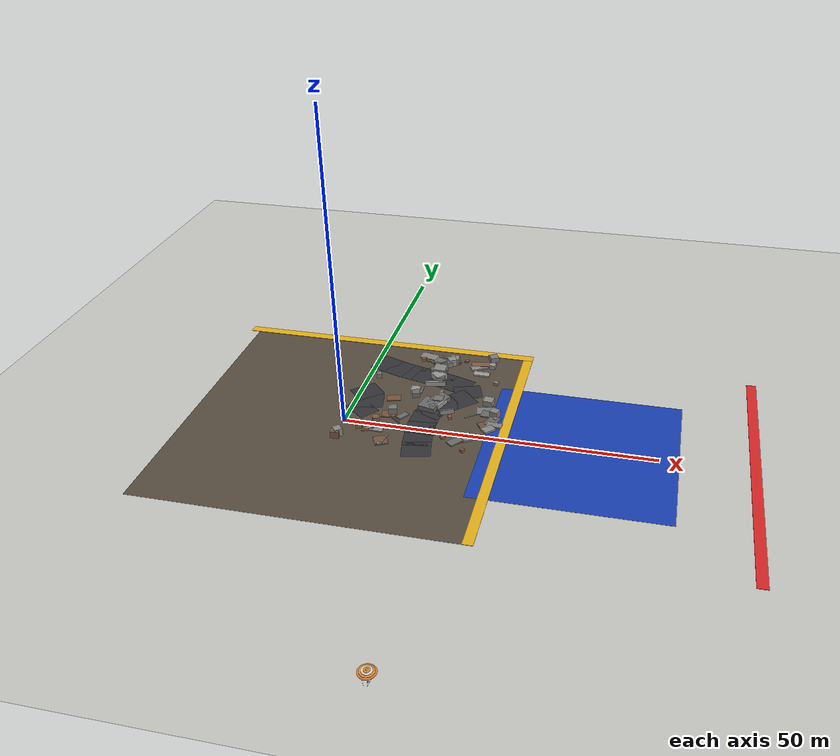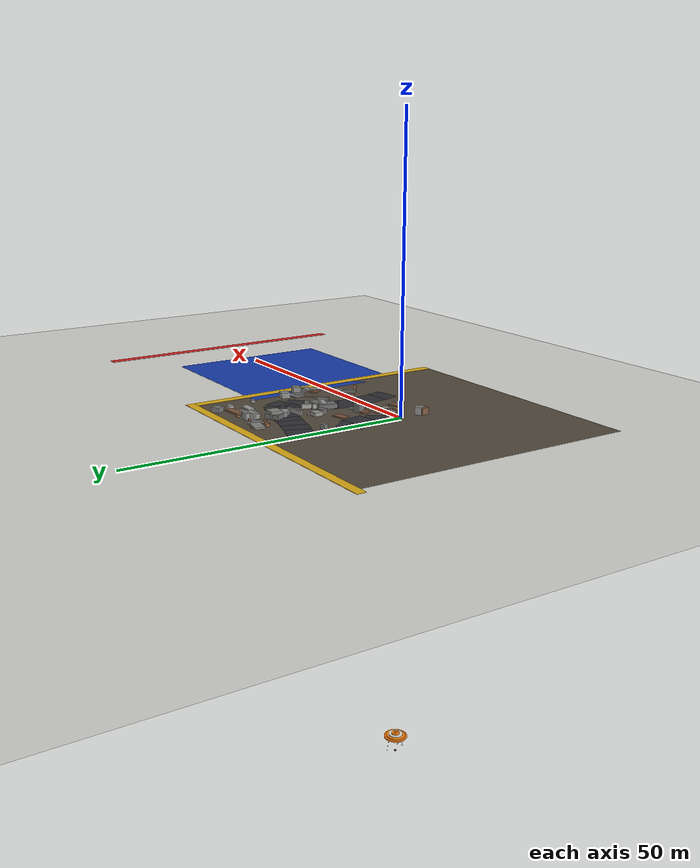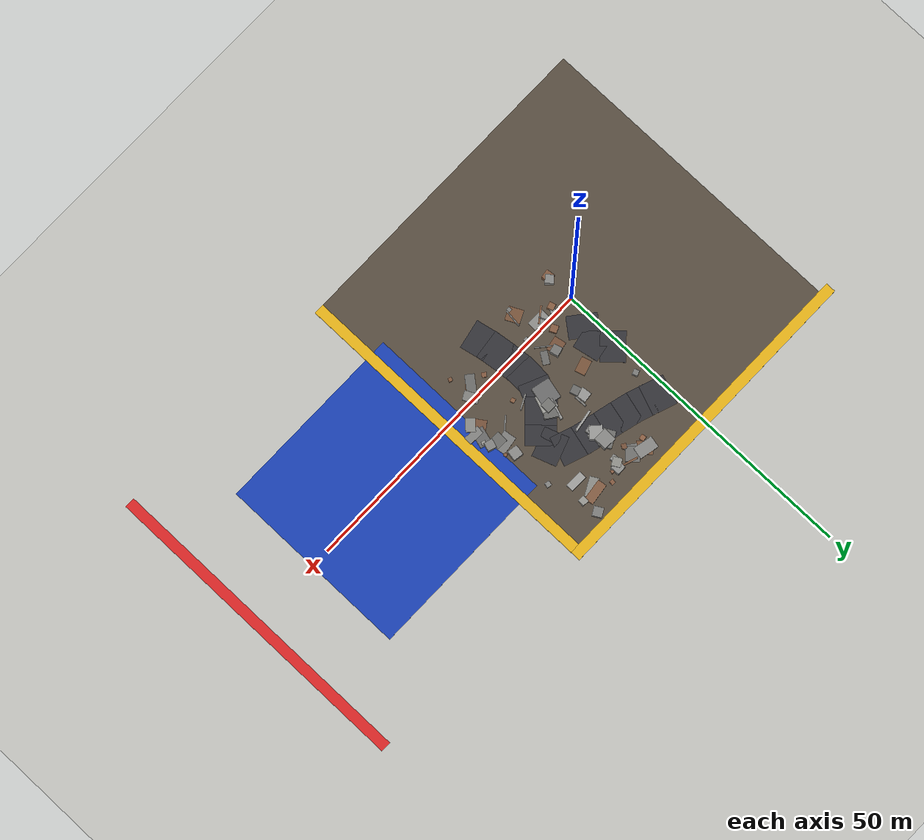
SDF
<sdf version="1.6">
 <world name="navitas_arena">
  <model name="ground_plane">
   <static>true</static>
   <link name="link">
    <collision name="collision">
     <geometry><plane><normal>0 0 1</normal><size>400 400</size></plane></geometry>
     <surface><friction><ode><mu>0.720</mu><mu2>0.720</mu2></ode></friction></surface>
    </collision>
    <visual name="visual">
     <cast_shadows>false</cast_shadows>
     <geometry><plane><normal>0 0 1</normal><size>400 400</size></plane></geometry>
     <material><ambient>0.720 0.700 0.650 1</ambient><diffuse>0.720 0.700 0.650 1</diffuse></material>
    </visual>
   </link>
  </model>
  <model name="landing">
   <static>true</static>
   <pose>38.000 0.000 0.010 0 0 0.000</pose>
   <link name="link">
    <collision name="col"><geometry><box><size>30.000 30.000 0.020</size></box></geometry></collision>
    <visual name="vis">
     <geometry><box><size>30.000 30.000 0.020</size></box></geometry>
     <material><ambient>0.10 0.25 0.70 1</ambient><diffuse>0.10 0.25 0.70 1</diffuse></material>
    </visual>
   </link>
  </model>
  <model name="gd_orta">
   <static>true</static>
   <pose>0.000 0.000 0.010 0 0 0.000</pose>
   <link name="link">
    <collision name="col"><geometry><box><size>50.000 50.000 0.020</size></box></geometry></collision>
    <visual name="vis">
     <geometry><box><size>50.000 50.000 0.020</size></box></geometry>
     <material><ambient>0.34 0.30 0.25 1</ambient><diffuse>0.34 0.30 0.25 1</diffuse></material>
    </visual>
   </link>
  </model>
  <model name="brd_orta_N">
   <static>true</static>
   <pose>0.000 25.800 0.040 0 0 0.000</pose>
   <link name="link">
    <collision name="col"><geometry><box><size>53.200 1.600 0.080</size></box></geometry></collision>
    <visual name="vis">
     <geometry><box><size>53.200 1.600 0.080</size></box></geometry>
     <material><ambient>0.90 0.70 0.10 1</ambient><diffuse>0.90 0.70 0.10 1</diffuse></material>
    </visual>
   </link>
  </model>
  <model name="brd_orta_E">
   <static>true</static>
   <pose>25.800 0.000 0.040 0 0 0.000</pose>
   <link name="link">
    <collision name="col"><geometry><box><size>1.600 50.000 0.080</size></box></geometry></collision>
    <visual name="vis">
     <geometry><box><size>1.600 50.000 0.080</size></box></geometry>
     <material><ambient>0.90 0.70 0.10 1</ambient><diffuse>0.90 0.70 0.10 1</diffuse></material>
    </visual>
   </link>
  </model>
  <model name="road_orta_2_11">
   <static>true</static>
   <pose>1.761 4.000 0.040 0 0 0.895</pose>
   <link name="link">
    <collision name="col"><geometry><box><size>3.463 4.600 0.020</size></box></geometry></collision>
    <visual name="vis">
     <geometry><box><size>3.463 4.600 0.020</size></box></geometry>
     <material><ambient>0.20 0.20 0.22 1</ambient><diffuse>0.20 0.20 0.22 1</diffuse></material>
    </visual>
   </link>
  </model>
  <model name="road_orta_2_12">
   <static>true</static>
   <pose>2.263 6.536 0.040 0 0 1.763</pose>
   <link name="link">
    <collision name="col"><geometry><box><size>4.031 4.600 0.020</size></box></geometry></collision>
    <visual name="vis">
     <geometry><box><size>4.031 4.600 0.020</size></box></geometry>
     <material><ambient>0.20 0.20 0.22 1</ambient><diffuse>0.20 0.20 0.22 1</diffuse></material>
    </visual>
   </link>
  </model>
  <model name="road_orta_2_13">
   <static>true</static>
   <pose>0.994 9.124 0.040 0 0 2.316</pose>
   <link name="link">
    <collision name="col"><geometry><box><size>3.760 4.600 0.020</size></box></geometry></collision>
    <visual name="vis">
     <geometry><box><size>3.760 4.600 0.020</size></box></geometry>
     <material><ambient>0.20 0.20 0.22 1</ambient><diffuse>0.20 0.20 0.22 1</diffuse></material>
    </visual>
   </link>
  </model>
  <model name="road_orta_3_8">
   <static>true</static>
   <pose>13.359 -5.200 0.040 0 0 1.778</pose>
   <link name="link">
    <collision name="col"><geometry><box><size>3.761 4.600 0.020</size></box></geometry></collision>
    <visual name="vis">
     <geometry><box><size>3.761 4.600 0.020</size></box></geometry>
     <material><ambient>0.20 0.20 0.22 1</ambient><diffuse>0.20 0.20 0.22 1</diffuse></material>
    </visual>
   </link>
  </model>
  <model name="road_orta_3_9">
   <static>true</static>
   <pose>12.883 -2.400 0.040 0 0 1.700</pose>
   <link name="link">
    <collision name="col"><geometry><box><size>3.724 4.600 0.020</size></box></geometry></collision>
    <visual name="vis">
     <geometry><box><size>3.724 4.600 0.020</size></box></geometry>
     <material><ambient>0.20 0.20 0.22 1</ambient><diffuse>0.20 0.20 0.22 1</diffuse></material>
    </visual>
   </link>
  </model>
  <model name="road_orta_3_10">
   <static>true</static>
   <pose>12.580 0.400 0.040 0 0 1.657</pose>
   <link name="link">
    <collision name="col"><geometry><box><size>3.710 4.600 0.020</size></box></geometry></collision>
    <visual name="vis">
     <geometry><box><size>3.710 4.600 0.020</size></box></geometry>
     <material><ambient>0.20 0.20 0.22 1</ambient><diffuse>0.20 0.20 0.22 1</diffuse></material>
    </visual>
   </link>
  </model>
  <model name="road_orta_3_11">
   <static>true</static>
   <pose>12.520 3.200 0.040 0 0 1.527</pose>
   <link name="link">
    <collision name="col"><geometry><box><size>3.703 4.600 0.020</size></box></geometry></collision>
    <visual name="vis">
     <geometry><box><size>3.703 4.600 0.020</size></box></geometry>
     <material><ambient>0.20 0.20 0.22 1</ambient><diffuse>0.20 0.20 0.22 1</diffuse></material>
    </visual>
   </link>
  </model>
  <model name="road_orta_3_12">
   <static>true</static>
   <pose>13.121 5.811 0.040 0 0 1.152</pose>
   <link name="link">
    <collision name="col"><geometry><box><size>3.551 4.600 0.020</size></box></geometry></collision>
    <visual name="vis">
     <geometry><box><size>3.551 4.600 0.020</size></box></geometry>
     <material><ambient>0.20 0.20 0.22 1</ambient><diffuse>0.20 0.20 0.22 1</diffuse></material>
    </visual>
   </link>
  </model>
  <model name="road_orta_3_13">
   <static>true</static>
   <pose>14.803 8.077 0.040 0 0 0.745</pose>
   <link name="link">
    <collision name="col"><geometry><box><size>4.011 4.600 0.020</size></box></geometry></collision>
    <visual name="vis">
     <geometry><box><size>4.011 4.600 0.020</size></box></geometry>
     <material><ambient>0.20 0.20 0.22 1</ambient><diffuse>0.20 0.20 0.22 1</diffuse></material>
    </visual>
   </link>
  </model>
  <model name="road_orta_3_14">
   <static>true</static>
   <pose>17.014 10.157 0.040 0 0 0.765</pose>
   <link name="link">
    <collision name="col"><geometry><box><size>3.861 4.600 0.020</size></box></geometry></collision>
    <visual name="vis">
     <geometry><box><size>3.861 4.600 0.020</size></box></geometry>
     <material><ambient>0.20 0.20 0.22 1</ambient><diffuse>0.20 0.20 0.22 1</diffuse></material>
    </visual>
   </link>
  </model>
  <model name="road_orta_3_15">
   <static>true</static>
   <pose>17.605 12.544 0.040 0 0 1.908</pose>
   <link name="link">
    <collision name="col"><geometry><box><size>3.786 4.600 0.020</size></box></geometry></collision>
    <visual name="vis">
     <geometry><box><size>3.786 4.600 0.020</size></box></geometry>
     <material><ambient>0.20 0.20 0.22 1</ambient><diffuse>0.20 0.20 0.22 1</diffuse></material>
    </visual>
   </link>
  </model>
  <model name="road_orta_3_16">
   <static>true</static>
   <pose>15.441 14.505 0.040 0 0 2.801</pose>
   <link name="link">
    <collision name="col"><geometry><box><size>4.480 4.600 0.020</size></box></geometry></collision>
    <visual name="vis">
     <geometry><box><size>4.480 4.600 0.020</size></box></geometry>
     <material><ambient>0.20 0.20 0.22 1</ambient><diffuse>0.20 0.20 0.22 1</diffuse></material>
    </visual>
   </link>
  </model>
  <model name="road_orta_3_17">
   <static>true</static>
   <pose>12.365 15.463 0.040 0 0 2.888</pose>
   <link name="link">
    <collision name="col"><geometry><box><size>3.770 4.600 0.020</size></box></geometry></collision>
    <visual name="vis">
     <geometry><box><size>3.770 4.600 0.020</size></box></geometry>
     <material><ambient>0.20 0.20 0.22 1</ambient><diffuse>0.20 0.20 0.22 1</diffuse></material>
    </visual>
   </link>
  </model>
  <model name="road_orta_3_18">
   <static>true</static>
   <pose>9.567 16.163 0.040 0 0 2.904</pose>
   <link name="link">
    <collision name="col"><geometry><box><size>3.800 4.600 0.020</size></box></geometry></collision>
    <visual name="vis">
     <geometry><box><size>3.800 4.600 0.020</size></box></geometry>
     <material><ambient>0.20 0.20 0.22 1</ambient><diffuse>0.20 0.20 0.22 1</diffuse></material>
    </visual>
   </link>
  </model>
  <model name="road_orta_3_19">
   <static>true</static>
   <pose>6.892 16.836 0.040 0 0 2.885</pose>
   <link name="link">
    <collision name="col"><geometry><box><size>3.517 4.600 0.020</size></box></geometry></collision>
    <visual name="vis">
     <geometry><box><size>3.517 4.600 0.020</size></box></geometry>
     <material><ambient>0.20 0.20 0.22 1</ambient><diffuse>0.20 0.20 0.22 1</diffuse></material>
    </visual>
   </link>
  </model>
  <model name="road_orta_3_20">
   <static>true</static>
   <pose>4.376 17.589 0.040 0 0 2.817</pose>
   <link name="link">
    <collision name="col"><geometry><box><size>3.539 4.600 0.020</size></box></geometry></collision>
    <visual name="vis">
     <geometry><box><size>3.539 4.600 0.020</size></box></geometry>
     <material><ambient>0.20 0.20 0.22 1</ambient><diffuse>0.20 0.20 0.22 1</diffuse></material>
    </visual>
   </link>
  </model>
  <model name="road_orta_3_21">
   <static>true</static>
   <pose>1.726 18.524 0.040 0 0 2.789</pose>
   <link name="link">
    <collision name="col"><geometry><box><size>3.881 4.600 0.020</size></box></geometry></collision>
    <visual name="vis">
     <geometry><box><size>3.881 4.600 0.020</size></box></geometry>
     <material><ambient>0.20 0.20 0.22 1</ambient><diffuse>0.20 0.20 0.22 1</diffuse></material>
    </visual>
   </link>
  </model>
  <model name="blk_orta_3_1_0">
   <static>true</static>
   <pose>13.043 9.132 0.425 0 0 1.237</pose>
   <link name="link">
    <collision name="col"><geometry><box><size>4.063 0.356 0.850</size></box></geometry></collision>
    <visual name="vis">
     <geometry><box><size>4.063 0.356 0.850</size></box></geometry>
     <material><ambient>0.59 0.59 0.58 1</ambient><diffuse>0.59 0.59 0.58 1</diffuse></material>
    </visual>
   </link>
  </model>
  <model name="blk_orta_3_1_1">
   <static>true</static>
   <pose>13.751 8.754 0.425 0 0 0.961</pose>
   <link name="link">
    <collision name="col"><geometry><box><size>2.867 2.124 0.850</size></box></geometry></collision>
    <visual name="vis">
     <geometry><box><size>2.867 2.124 0.850</size></box></geometry>
     <material><ambient>0.42 0.42 0.41 1</ambient><diffuse>0.42 0.42 0.41 1</diffuse></material>
    </visual>
   </link>
  </model>
  <model name="blk_orta_3_1_2">
   <static>true</static>
   <pose>12.506 6.894 0.425 0 0 1.340</pose>
   <link name="link">
    <collision name="col"><geometry><box><size>3.217 2.908 0.850</size></box></geometry></collision>
    <visual name="vis">
     <geometry><box><size>3.217 2.908 0.850</size></box></geometry>
     <material><ambient>0.42 0.42 0.42 1</ambient><diffuse>0.42 0.42 0.42 1</diffuse></material>
    </visual>
   </link>
  </model>
  <model name="blk_orta_3_1_3">
   <static>true</static>
   <pose>13.083 6.121 0.425 0 0 0.471</pose>
   <link name="link">
    <collision name="col"><geometry><box><size>0.994 0.994 0.850</size></box></geometry></collision>
    <visual name="vis">
     <geometry><box><size>0.994 0.994 0.850</size></box></geometry>
     <material><ambient>0.43 0.43 0.42 1</ambient><diffuse>0.43 0.43 0.42 1</diffuse></material>
    </visual>
   </link>
  </model>
  <model name="blk_orta_3_1_4">
   <static>true</static>
   <pose>13.597 8.377 0.505 0 0 3.120</pose>
   <link name="link">
    <collision name="col"><geometry><box><size>1.605 1.605 1.010</size></box></geometry></collision>
    <visual name="vis">
     <geometry><box><size>1.605 1.605 1.010</size></box></geometry>
     <material><ambient>0.45 0.45 0.44 1</ambient><diffuse>0.45 0.45 0.44 1</diffuse></material>
    </visual>
   </link>
  </model>
  <model name="blk_orta_3_1_5">
   <static>true</static>
   <pose>15.682 5.416 0.425 0 0 0.465</pose>
   <link name="link">
    <collision name="col"><geometry><box><size>2.324 0.215 0.850</size></box></geometry></collision>
    <visual name="vis">
     <geometry><box><size>2.324 0.215 0.850</size></box></geometry>
     <material><ambient>0.53 0.53 0.52 1</ambient><diffuse>0.53 0.53 0.52 1</diffuse></material>
    </visual>
   </link>
  </model>
  <model name="blk_orta_3_1_6">
   <static>true</static>
   <pose>13.386 7.809 0.425 0 0 1.223</pose>
   <link name="link">
    <collision name="col"><geometry><box><size>2.590 2.421 0.850</size></box></geometry></collision>
    <visual name="vis">
     <geometry><box><size>2.590 2.421 0.850</size></box></geometry>
     <material><ambient>0.62 0.62 0.60 1</ambient><diffuse>0.62 0.62 0.60 1</diffuse></material>
    </visual>
   </link>
  </model>
  <model name="blk_orta_3_2_0">
   <static>true</static>
   <pose>12.155 16.168 0.425 0 0 2.406</pose>
   <link name="link">
    <collision name="col"><geometry><box><size>2.184 0.214 0.850</size></box></geometry></collision>
    <visual name="vis">
     <geometry><box><size>2.184 0.214 0.850</size></box></geometry>
     <material><ambient>0.59 0.59 0.57 1</ambient><diffuse>0.59 0.59 0.57 1</diffuse></material>
    </visual>
   </link>
  </model>
  <model name="blk_orta_3_2_1">
   <static>true</static>
   <pose>11.307 17.647 0.425 0 0 0.478</pose>
   <link name="link">
    <collision name="col"><geometry><box><size>2.611 1.941 0.850</size></box></geometry></collision>
    <visual name="vis">
     <geometry><box><size>2.611 1.941 0.850</size></box></geometry>
     <material><ambient>0.43 0.43 0.42 1</ambient><diffuse>0.43 0.43 0.42 1</diffuse></material>
    </visual>
   </link>
  </model>
  <model name="blk_orta_3_2_2">
   <static>true</static>
   <pose>11.817 13.437 0.425 0 0 0.164</pose>
   <link name="link">
    <collision name="col"><geometry><box><size>3.445 0.315 0.850</size></box></geometry></collision>
    <visual name="vis">
     <geometry><box><size>3.445 0.315 0.850</size></box></geometry>
     <material><ambient>0.62 0.62 0.61 1</ambient><diffuse>0.62 0.62 0.61 1</diffuse></material>
    </visual>
   </link>
  </model>
  <model name="blk_orta_3_2_3">
   <static>true</static>
   <pose>11.802 15.916 0.481 0 0 0.829</pose>
   <link name="link">
    <collision name="col"><geometry><box><size>1.987 1.987 0.962</size></box></geometry></collision>
    <visual name="vis">
     <geometry><box><size>1.987 1.987 0.962</size></box></geometry>
     <material><ambient>0.60 0.60 0.59 1</ambient><diffuse>0.60 0.60 0.59 1</diffuse></material>
    </visual>
   </link>
  </model>
  <model name="blk_orta_3_2_4">
   <static>true</static>
   <pose>11.668 17.508 0.655 0 0 3.108</pose>
   <link name="link">
    <collision name="col"><geometry><box><size>2.084 2.084 1.311</size></box></geometry></collision>
    <visual name="vis">
     <geometry><box><size>2.084 2.084 1.311</size></box></geometry>
     <material><ambient>0.53 0.53 0.52 1</ambient><diffuse>0.53 0.53 0.52 1</diffuse></material>
    </visual>
   </link>
  </model>
  <model name="blk_orta_3_2_5">
   <static>true</static>
   <pose>12.084 15.139 0.425 0 0 0.167</pose>
   <link name="link">
    <collision name="col"><geometry><box><size>1.114 1.114 0.850</size></box></geometry></collision>
    <visual name="vis">
     <geometry><box><size>1.114 1.114 0.850</size></box></geometry>
     <material><ambient>0.51 0.51 0.50 1</ambient><diffuse>0.51 0.51 0.50 1</diffuse></material>
    </visual>
   </link>
  </model>
  <model name="blk_orta_3_2_6">
   <static>true</static>
   <pose>11.300 15.963 0.425 0 0 1.289</pose>
   <link name="link">
    <collision name="col"><geometry><box><size>0.633 0.633 0.850</size></box></geometry></collision>
    <visual name="vis">
     <geometry><box><size>0.633 0.633 0.850</size></box></geometry>
     <material><ambient>0.59 0.59 0.57 1</ambient><diffuse>0.59 0.59 0.57 1</diffuse></material>
    </visual>
   </link>
  </model>
  <model name="deb_orta_2">
   <static>true</static>
   <pose>7.858 -3.983 0.157 0 0 1.451</pose>
   <link name="link">
    <collision name="col"><geometry><box><size>2.770 0.180 0.315</size></box></geometry></collision>
    <visual name="vis">
     <geometry><box><size>2.770 0.180 0.315</size></box></geometry>
     <material><ambient>0.53 0.53 0.52 1</ambient><diffuse>0.53 0.53 0.52 1</diffuse></material>
    </visual>
   </link>
  </model>
  <model name="deb_orta_4">
   <static>true</static>
   <pose>18.001 21.660 0.162 0 0 0.132</pose>
   <link name="link">
    <collision name="col"><geometry><box><size>3.339 1.401 0.324</size></box></geometry></collision>
    <visual name="vis">
     <geometry><box><size>3.339 1.401 0.324</size></box></geometry>
     <material><ambient>0.51 0.36 0.26 1</ambient><diffuse>0.51 0.36 0.26 1</diffuse></material>
    </visual>
   </link>
  </model>
  <model name="deb_orta_8">
   <static>true</static>
   <pose>5.498 -1.181 0.095 0 0 3.117</pose>
   <link name="link">
    <collision name="col"><geometry><box><size>2.810 1.433 0.190</size></box></geometry></collision>
    <visual name="vis">
     <geometry><box><size>2.810 1.433 0.190</size></box></geometry>
     <material><ambient>0.55 0.55 0.54 1</ambient><diffuse>0.55 0.55 0.54 1</diffuse></material>
    </visual>
   </link>
  </model>
  <model name="deb_orta_9">
   <static>true</static>
   <pose>13.305 21.657 0.226 0 0 1.503</pose>
   <link name="link">
    <collision name="col"><geometry><box><size>0.646 0.646 0.452</size></box></geometry></collision>
    <visual name="vis">
     <geometry><box><size>0.646 0.646 0.452</size></box></geometry>
     <material><ambient>0.50 0.35 0.25 1</ambient><diffuse>0.50 0.35 0.25 1</diffuse></material>
    </visual>
   </link>
  </model>
  <model name="deb_orta_13">
   <static>true</static>
   <pose>23.364 4.590 0.140 0 0 1.288</pose>
   <link name="link">
    <collision name="col"><geometry><box><size>2.653 1.808 0.281</size></box></geometry></collision>
    <visual name="vis">
     <geometry><box><size>2.653 1.808 0.281</size></box></geometry>
     <material><ambient>0.41 0.41 0.41 1</ambient><diffuse>0.41 0.41 0.41 1</diffuse></material>
    </visual>
   </link>
  </model>
  <model name="deb_orta_16">
   <static>true</static>
   <pose>18.930 -1.732 0.107 0 0 0.892</pose>
   <link name="link">
    <collision name="col"><geometry><box><size>3.130 1.441 0.213</size></box></geometry></collision>
    <visual name="vis">
     <geometry><box><size>3.130 1.441 0.213</size></box></geometry>
     <material><ambient>0.42 0.42 0.41 1</ambient><diffuse>0.42 0.42 0.41 1</diffuse></material>
    </visual>
   </link>
  </model>
  <model name="deb_orta_20">
   <static>true</static>
   <pose>22.086 6.592 0.109 0 0 3.087</pose>
   <link name="link">
    <collision name="col"><geometry><box><size>1.828 1.788 0.217</size></box></geometry></collision>
    <visual name="vis">
     <geometry><box><size>1.828 1.788 0.217</size></box></geometry>
     <material><ambient>0.42 0.42 0.41 1</ambient><diffuse>0.42 0.42 0.41 1</diffuse></material>
    </visual>
   </link>
  </model>
  <model name="deb_orta_26">
   <static>true</static>
   <pose>14.215 21.386 0.257 0 0 1.494</pose>
   <link name="link">
    <collision name="col"><geometry><box><size>0.478 0.478 0.514</size></box></geometry></collision>
    <visual name="vis">
     <geometry><box><size>0.478 0.478 0.514</size></box></geometry>
     <material><ambient>0.53 0.37 0.27 1</ambient><diffuse>0.53 0.37 0.27 1</diffuse></material>
    </visual>
   </link>
  </model>
  <model name="deb_orta_29">
   <static>true</static>
   <pose>19.844 5.804 0.084 0 0 0.687</pose>
   <link name="link">
    <collision name="col"><geometry><box><size>2.913 0.237 0.169</size></box></geometry></collision>
    <visual name="vis">
     <geometry><box><size>2.913 0.237 0.169</size></box></geometry>
     <material><ambient>0.47 0.47 0.46 1</ambient><diffuse>0.47 0.47 0.46 1</diffuse></material>
    </visual>
   </link>
  </model>
  <model name="deb_orta_30">
   <static>true</static>
   <pose>23.893 3.628 0.152 0 0 3.086</pose>
   <link name="link">
    <collision name="col"><geometry><box><size>2.454 1.243 0.304</size></box></geometry></collision>
    <visual name="vis">
     <geometry><box><size>2.454 1.243 0.304</size></box></geometry>
     <material><ambient>0.51 0.51 0.50 1</ambient><diffuse>0.51 0.51 0.50 1</diffuse></material>
    </visual>
   </link>
  </model>
  <model name="deb_orta_39">
   <static>true</static>
   <pose>11.553 22.176 0.144 0 0 2.817</pose>
   <link name="link">
    <collision name="col"><geometry><box><size>2.626 0.262 0.288</size></box></geometry></collision>
    <visual name="vis">
     <geometry><box><size>2.626 0.262 0.288</size></box></geometry>
     <material><ambient>0.50 0.35 0.25 1</ambient><diffuse>0.50 0.35 0.25 1</diffuse></material>
    </visual>
   </link>
  </model>
  <model name="deb_orta_41">
   <static>true</static>
   <pose>5.254 1.552 0.210 0 0 1.754</pose>
   <link name="link">
    <collision name="col"><geometry><box><size>0.404 0.404 0.420</size></box></geometry></collision>
    <visual name="vis">
     <geometry><box><size>0.404 0.404 0.420</size></box></geometry>
     <material><ambient>0.47 0.33 0.24 1</ambient><diffuse>0.47 0.33 0.24 1</diffuse></material>
    </visual>
   </link>
  </model>
  <model name="deb_orta_45">
   <static>true</static>
   <pose>8.467 22.478 0.162 0 0 2.933</pose>
   <link name="link">
    <collision name="col"><geometry><box><size>3.067 1.820 0.324</size></box></geometry></collision>
    <visual name="vis">
     <geometry><box><size>3.067 1.820 0.324</size></box></geometry>
     <material><ambient>0.53 0.53 0.52 1</ambient><diffuse>0.53 0.53 0.52 1</diffuse></material>
    </visual>
   </link>
  </model>
  <model name="deb_orta_48">
   <static>true</static>
   <pose>4.946 1.329 0.361 0 0 1.979</pose>
   <link name="link">
    <collision name="col"><geometry><box><size>1.104 1.104 0.722</size></box></geometry></collision>
    <visual name="vis">
     <geometry><box><size>1.104 1.104 0.722</size></box></geometry>
     <material><ambient>0.52 0.36 0.26 1</ambient><diffuse>0.52 0.36 0.26 1</diffuse></material>
    </visual>
   </link>
  </model>
  <model name="deb_orta_49">
   <static>true</static>
   <pose>8.840 3.241 0.094 0 0 0.980</pose>
   <link name="link">
    <collision name="col"><geometry><box><size>2.019 1.084 0.188</size></box></geometry></collision>
    <visual name="vis">
     <geometry><box><size>2.019 1.084 0.188</size></box></geometry>
     <material><ambient>0.42 0.42 0.41 1</ambient><diffuse>0.42 0.42 0.41 1</diffuse></material>
    </visual>
   </link>
  </model>
  <model name="deb_orta_50">
   <static>true</static>
   <pose>16.597 -1.349 0.149 0 0 0.924</pose>
   <link name="link">
    <collision name="col"><geometry><box><size>0.710 0.710 0.298</size></box></geometry></collision>
    <visual name="vis">
     <geometry><box><size>0.710 0.710 0.298</size></box></geometry>
     <material><ambient>0.51 0.35 0.25 1</ambient><diffuse>0.51 0.35 0.25 1</diffuse></material>
    </visual>
   </link>
  </model>
  <model name="deb_orta_56">
   <static>true</static>
   <pose>13.337 21.620 0.580 0 0 0.038</pose>
   <link name="link">
    <collision name="col"><geometry><box><size>1.439 1.439 1.160</size></box></geometry></collision>
    <visual name="vis">
     <geometry><box><size>1.439 1.439 1.160</size></box></geometry>
     <material><ambient>0.56 0.56 0.55 1</ambient><diffuse>0.56 0.56 0.55 1</diffuse></material>
    </visual>
   </link>
  </model>
  <model name="deb_orta_60">
   <static>true</static>
   <pose>0.060 -4.451 0.594 0 0 0.127</pose>
   <link name="link">
    <collision name="col"><geometry><box><size>1.368 1.368 1.189</size></box></geometry></collision>
    <visual name="vis">
     <geometry><box><size>1.368 1.368 1.189</size></box></geometry>
     <material><ambient>0.50 0.35 0.25 1</ambient><diffuse>0.50 0.35 0.25 1</diffuse></material>
    </visual>
   </link>
  </model>
  <model name="deb_orta_61">
   <static>true</static>
   <pose>17.839 20.812 0.130 0 0 0.494</pose>
   <link name="link">
    <collision name="col"><geometry><box><size>2.974 1.461 0.259</size></box></geometry></collision>
    <visual name="vis">
     <geometry><box><size>2.974 1.461 0.259</size></box></geometry>
     <material><ambient>0.54 0.54 0.52 1</ambient><diffuse>0.54 0.54 0.52 1</diffuse></material>
    </visual>
   </link>
  </model>
  <model name="deb_orta_63">
   <static>true</static>
   <pose>0.267 -4.011 0.669 0 0 2.288</pose>
   <link name="link">
    <collision name="col"><geometry><box><size>1.285 1.285 1.339</size></box></geometry></collision>
    <visual name="vis">
     <geometry><box><size>1.285 1.285 1.339</size></box></geometry>
     <material><ambient>0.53 0.53 0.52 1</ambient><diffuse>0.53 0.53 0.52 1</diffuse></material>
    </visual>
   </link>
  </model>
  <model name="deb_orta_67">
   <static>true</static>
   <pose>4.776 -1.562 0.118 0 0 0.638</pose>
   <link name="link">
    <collision name="col"><geometry><box><size>2.675 0.259 0.236</size></box></geometry></collision>
    <visual name="vis">
     <geometry><box><size>2.675 0.259 0.236</size></box></geometry>
     <material><ambient>0.53 0.37 0.26 1</ambient><diffuse>0.53 0.37 0.26 1</diffuse></material>
    </visual>
   </link>
  </model>
  <model name="deb_orta_70">
   <static>true</static>
   <pose>18.744 18.613 0.143 0 0 3.117</pose>
   <link name="link">
    <collision name="col"><geometry><box><size>2.751 1.222 0.285</size></box></geometry></collision>
    <visual name="vis">
     <geometry><box><size>2.751 1.222 0.285</size></box></geometry>
     <material><ambient>0.62 0.62 0.61 1</ambient><diffuse>0.62 0.62 0.61 1</diffuse></material>
    </visual>
   </link>
  </model>
  <model name="deb_orta_71">
   <static>true</static>
   <pose>5.983 8.004 0.106 0 0 0.279</pose>
   <link name="link">
    <collision name="col"><geometry><box><size>2.349 1.573 0.212</size></box></geometry></collision>
    <visual name="vis">
     <geometry><box><size>2.349 1.573 0.212</size></box></geometry>
     <material><ambient>0.47 0.33 0.23 1</ambient><diffuse>0.47 0.33 0.23 1</diffuse></material>
    </visual>
   </link>
  </model>
  <model name="deb_orta_73">
   <static>true</static>
   <pose>10.458 20.111 0.238 0 0 1.028</pose>
   <link name="link">
    <collision name="col"><geometry><box><size>0.759 0.759 0.475</size></box></geometry></collision>
    <visual name="vis">
     <geometry><box><size>0.759 0.759 0.475</size></box></geometry>
     <material><ambient>0.46 0.32 0.23 1</ambient><diffuse>0.46 0.32 0.23 1</diffuse></material>
    </visual>
   </link>
  </model>
  <model name="deb_orta_89">
   <static>true</static>
   <pose>7.344 -4.188 0.095 0 0 2.026</pose>
   <link name="link">
    <collision name="col"><geometry><box><size>2.250 2.108 0.191</size></box></geometry></collision>
    <visual name="vis">
     <geometry><box><size>2.250 2.108 0.191</size></box></geometry>
     <material><ambient>0.47 0.33 0.23 1</ambient><diffuse>0.47 0.33 0.23 1</diffuse></material>
    </visual>
   </link>
  </model>
  <model name="deb_orta_93">
   <static>true</static>
   <pose>19.133 -1.828 0.096 0 0 0.694</pose>
   <link name="link">
    <collision name="col"><geometry><box><size>2.951 1.087 0.192</size></box></geometry></collision>
    <visual name="vis">
     <geometry><box><size>2.951 1.087 0.192</size></box></geometry>
     <material><ambient>0.48 0.34 0.24 1</ambient><diffuse>0.48 0.34 0.24 1</diffuse></material>
    </visual>
   </link>
  </model>
  <model name="deb_orta_94">
   <static>true</static>
   <pose>21.652 7.446 0.098 0 0 0.147</pose>
   <link name="link">
    <collision name="col"><geometry><box><size>2.844 1.990 0.196</size></box></geometry></collision>
    <visual name="vis">
     <geometry><box><size>2.844 1.990 0.196</size></box></geometry>
     <material><ambient>0.49 0.49 0.48 1</ambient><diffuse>0.49 0.49 0.48 1</diffuse></material>
    </visual>
   </link>
  </model>
  <model name="deb_orta_98">
   <static>true</static>
   <pose>8.999 10.937 0.347 0 0 1.678</pose>
   <link name="link">
    <collision name="col"><geometry><box><size>1.532 1.532 0.694</size></box></geometry></collision>
    <visual name="vis">
     <geometry><box><size>1.532 1.532 0.694</size></box></geometry>
     <material><ambient>0.59 0.59 0.58 1</ambient><diffuse>0.59 0.59 0.58 1</diffuse></material>
    </visual>
   </link>
  </model>
  <model name="deb_orta_99">
   <static>true</static>
   <pose>23.177 2.249 0.170 0 0 0.799</pose>
   <link name="link">
    <collision name="col"><geometry><box><size>2.031 1.452 0.340</size></box></geometry></collision>
    <visual name="vis">
     <geometry><box><size>2.031 1.452 0.340</size></box></geometry>
     <material><ambient>0.54 0.54 0.52 1</ambient><diffuse>0.54 0.54 0.52 1</diffuse></material>
    </visual>
   </link>
  </model>
  <model name="deb_orta_102">
   <static>true</static>
   <pose>12.728 20.347 0.451 0 0 1.670</pose>
   <link name="link">
    <collision name="col"><geometry><box><size>0.914 0.914 0.902</size></box></geometry></collision>
    <visual name="vis">
     <geometry><box><size>0.914 0.914 0.902</size></box></geometry>
     <material><ambient>0.57 0.57 0.56 1</ambient><diffuse>0.57 0.57 0.56 1</diffuse></material>
    </visual>
   </link>
  </model>
  <model name="deb_orta_103">
   <static>true</static>
   <pose>6.516 3.231 0.116 0 0 0.178</pose>
   <link name="link">
    <collision name="col"><geometry><box><size>2.251 1.855 0.233</size></box></geometry></collision>
    <visual name="vis">
     <geometry><box><size>2.251 1.855 0.233</size></box></geometry>
     <material><ambient>0.46 0.32 0.23 1</ambient><diffuse>0.46 0.32 0.23 1</diffuse></material>
    </visual>
   </link>
  </model>
  <model name="deb_orta_106">
   <static>true</static>
   <pose>23.428 6.343 0.606 0 0 1.266</pose>
   <link name="link">
    <collision name="col"><geometry><box><size>1.334 1.334 1.212</size></box></geometry></collision>
    <visual name="vis">
     <geometry><box><size>1.334 1.334 1.212</size></box></geometry>
     <material><ambient>0.51 0.51 0.50 1</ambient><diffuse>0.51 0.51 0.50 1</diffuse></material>
    </visual>
   </link>
  </model>
  <model name="deb_orta_109">
   <static>true</static>
   <pose>12.921 20.967 0.616 0 0 0.510</pose>
   <link name="link">
    <collision name="col"><geometry><box><size>1.363 1.363 1.232</size></box></geometry></collision>
    <visual name="vis">
     <geometry><box><size>1.363 1.363 1.232</size></box></geometry>
     <material><ambient>0.56 0.56 0.54 1</ambient><diffuse>0.56 0.56 0.54 1</diffuse></material>
    </visual>
   </link>
  </model>
  <model name="deb_orta_113">
   <static>true</static>
   <pose>7.309 -5.225 0.188 0 0 3.120</pose>
   <link name="link">
    <collision name="col"><geometry><box><size>0.576 0.576 0.377</size></box></geometry></collision>
    <visual name="vis">
     <geometry><box><size>0.576 0.576 0.377</size></box></geometry>
     <material><ambient>0.48 0.48 0.47 1</ambient><diffuse>0.48 0.48 0.47 1</diffuse></material>
    </visual>
   </link>
  </model>
  <model name="deb_orta_114">
   <static>true</static>
   <pose>8.564 22.345 0.099 0 0 2.231</pose>
   <link name="link">
    <collision name="col"><geometry><box><size>2.463 1.807 0.199</size></box></geometry></collision>
    <visual name="vis">
     <geometry><box><size>2.463 1.807 0.199</size></box></geometry>
     <material><ambient>0.47 0.33 0.23 1</ambient><diffuse>0.47 0.33 0.23 1</diffuse></material>
    </visual>
   </link>
  </model>
  <model name="deb_orta_118">
   <static>true</static>
   <pose>7.881 1.956 0.130 0 0 2.454</pose>
   <link name="link">
    <collision name="col"><geometry><box><size>2.619 0.185 0.260</size></box></geometry></collision>
    <visual name="vis">
     <geometry><box><size>2.619 0.185 0.260</size></box></geometry>
     <material><ambient>0.45 0.45 0.44 1</ambient><diffuse>0.45 0.45 0.44 1</diffuse></material>
    </visual>
   </link>
  </model>
  <model name="deb_orta_119">
   <static>true</static>
   <pose>10.253 21.414 0.103 0 0 0.916</pose>
   <link name="link">
    <collision name="col"><geometry><box><size>2.192 1.849 0.207</size></box></geometry></collision>
    <visual name="vis">
     <geometry><box><size>2.192 1.849 0.207</size></box></geometry>
     <material><ambient>0.47 0.47 0.46 1</ambient><diffuse>0.47 0.47 0.46 1</diffuse></material>
    </visual>
   </link>
  </model>
  <model name="deb_orta_127">
   <static>true</static>
   <pose>15.313 22.409 0.164 0 0 1.491</pose>
   <link name="link">
    <collision name="col"><geometry><box><size>0.655 0.655 0.328</size></box></geometry></collision>
    <visual name="vis">
     <geometry><box><size>0.655 0.655 0.328</size></box></geometry>
     <material><ambient>0.51 0.35 0.25 1</ambient><diffuse>0.51 0.35 0.25 1</diffuse></material>
    </visual>
   </link>
  </model>
  <model name="deb_orta_128">
   <static>true</static>
   <pose>10.406 21.718 0.143 0 0 0.752</pose>
   <link name="link">
    <collision name="col"><geometry><box><size>2.250 2.134 0.286</size></box></geometry></collision>
    <visual name="vis">
     <geometry><box><size>2.250 2.134 0.286</size></box></geometry>
     <material><ambient>0.44 0.44 0.43 1</ambient><diffuse>0.44 0.44 0.43 1</diffuse></material>
    </visual>
   </link>
  </model>
  <model name="deb_orta_134">
   <static>true</static>
   <pose>21.766 9.676 0.505 0 0 2.981</pose>
   <link name="link">
    <collision name="col"><geometry><box><size>1.579 1.579 1.011</size></box></geometry></collision>
    <visual name="vis">
     <geometry><box><size>1.579 1.579 1.011</size></box></geometry>
     <material><ambient>0.54 0.54 0.53 1</ambient><diffuse>0.54 0.54 0.53 1</diffuse></material>
    </visual>
   </link>
  </model>
  <model name="deb_orta_135">
   <static>true</static>
   <pose>23.759 5.373 0.198 0 0 2.757</pose>
   <link name="link">
    <collision name="col"><geometry><box><size>0.621 0.621 0.395</size></box></geometry></collision>
    <visual name="vis">
     <geometry><box><size>0.621 0.621 0.395</size></box></geometry>
     <material><ambient>0.60 0.60 0.58 1</ambient><diffuse>0.60 0.60 0.58 1</diffuse></material>
    </visual>
   </link>
  </model>
  <model name="deb_orta_136">
   <static>true</static>
   <pose>20.415 -4.316 0.273 0 0 1.111</pose>
   <link name="link">
    <collision name="col"><geometry><box><size>0.568 0.568 0.547</size></box></geometry></collision>
    <visual name="vis">
     <geometry><box><size>0.568 0.568 0.547</size></box></geometry>
     <material><ambient>0.50 0.35 0.25 1</ambient><diffuse>0.50 0.35 0.25 1</diffuse></material>
    </visual>
   </link>
  </model>
  <model name="deb_orta_138">
   <static>true</static>
   <pose>16.463 4.181 0.259 0 0 1.847</pose>
   <link name="link">
    <collision name="col"><geometry><box><size>0.620 0.620 0.519</size></box></geometry></collision>
    <visual name="vis">
     <geometry><box><size>0.620 0.620 0.519</size></box></geometry>
     <material><ambient>0.53 0.37 0.26 1</ambient><diffuse>0.53 0.37 0.26 1</diffuse></material>
    </visual>
   </link>
  </model>
  <model name="deb_orta_151">
   <static>true</static>
   <pose>8.765 -0.470 0.133 0 0 1.547</pose>
   <link name="link">
    <collision name="col"><geometry><box><size>0.656 0.656 0.266</size></box></geometry></collision>
    <visual name="vis">
     <geometry><box><size>0.656 0.656 0.266</size></box></geometry>
     <material><ambient>0.51 0.51 0.50 1</ambient><diffuse>0.51 0.51 0.50 1</diffuse></material>
    </visual>
   </link>
  </model>
  <model name="deb_orta_154">
   <static>true</static>
   <pose>20.133 21.304 0.377 0 0 3.084</pose>
   <link name="link">
    <collision name="col"><geometry><box><size>1.045 1.045 0.755</size></box></geometry></collision>
    <visual name="vis">
     <geometry><box><size>1.045 1.045 0.755</size></box></geometry>
     <material><ambient>0.59 0.59 0.57 1</ambient><diffuse>0.59 0.59 0.57 1</diffuse></material>
    </visual>
   </link>
  </model>
  <model name="deb_orta_155">
   <static>true</static>
   <pose>7.078 3.735 0.638 0 0 0.265</pose>
   <link name="link">
    <collision name="col"><geometry><box><size>1.355 1.355 1.275</size></box></geometry></collision>
    <visual name="vis">
     <geometry><box><size>1.355 1.355 1.275</size></box></geometry>
     <material><ambient>0.46 0.46 0.45 1</ambient><diffuse>0.46 0.46 0.45 1</diffuse></material>
    </visual>
   </link>
  </model>
  <model name="deb_orta_156">
   <static>true</static>
   <pose>9.956 11.238 0.133 0 0 1.610</pose>
   <link name="link">
    <collision name="col"><geometry><box><size>1.943 0.274 0.266</size></box></geometry></collision>
    <visual name="vis">
     <geometry><box><size>1.943 0.274 0.266</size></box></geometry>
     <material><ambient>0.50 0.50 0.49 1</ambient><diffuse>0.50 0.50 0.49 1</diffuse></material>
    </visual>
   </link>
  </model>
  <model name="deb_orta_157">
   <static>true</static>
   <pose>22.527 3.234 0.123 0 0 2.173</pose>
   <link name="link">
    <collision name="col"><geometry><box><size>2.132 2.116 0.247</size></box></geometry></collision>
    <visual name="vis">
     <geometry><box><size>2.132 2.116 0.247</size></box></geometry>
     <material><ambient>0.46 0.32 0.23 1</ambient><diffuse>0.46 0.32 0.23 1</diffuse></material>
    </visual>
   </link>
  </model>
  <model name="deb_orta_162">
   <static>true</static>
   <pose>9.049 11.074 0.276 0 0 1.219</pose>
   <link name="link">
    <collision name="col"><geometry><box><size>0.799 0.799 0.552</size></box></geometry></collision>
    <visual name="vis">
     <geometry><box><size>0.799 0.799 0.552</size></box></geometry>
     <material><ambient>0.49 0.49 0.48 1</ambient><diffuse>0.49 0.49 0.48 1</diffuse></material>
    </visual>
   </link>
  </model>
  <model name="deb_orta_163">
   <static>true</static>
   <pose>7.772 21.195 0.279 0 0 0.180</pose>
   <link name="link">
    <collision name="col"><geometry><box><size>0.770 0.770 0.558</size></box></geometry></collision>
    <visual name="vis">
     <geometry><box><size>0.770 0.770 0.558</size></box></geometry>
     <material><ambient>0.55 0.38 0.27 1</ambient><diffuse>0.55 0.38 0.27 1</diffuse></material>
    </visual>
   </link>
  </model>
  <model name="deb_orta_164">
   <static>true</static>
   <pose>19.872 23.854 0.454 0 0 0.517</pose>
   <link name="link">
    <collision name="col"><geometry><box><size>1.445 1.445 0.909</size></box></geometry></collision>
    <visual name="vis">
     <geometry><box><size>1.445 1.445 0.909</size></box></geometry>
     <material><ambient>0.49 0.49 0.48 1</ambient><diffuse>0.49 0.49 0.48 1</diffuse></material>
    </visual>
   </link>
  </model>
  <model name="deb_orta_166">
   <static>true</static>
   <pose>4.867 -0.623 0.153 0 0 1.965</pose>
   <link name="link">
    <collision name="col"><geometry><box><size>1.816 0.159 0.305</size></box></geometry></collision>
    <visual name="vis">
     <geometry><box><size>1.816 0.159 0.305</size></box></geometry>
     <material><ambient>0.40 0.40 0.40 1</ambient><diffuse>0.40 0.40 0.40 1</diffuse></material>
    </visual>
   </link>
  </model>
  <model name="deb_orta_167">
   <static>true</static>
   <pose>20.188 -0.466 0.149 0 0 2.057</pose>
   <link name="link">
    <collision name="col"><geometry><box><size>2.307 1.452 0.298</size></box></geometry></collision>
    <visual name="vis">
     <geometry><box><size>2.307 1.452 0.298</size></box></geometry>
     <material><ambient>0.50 0.50 0.49 1</ambient><diffuse>0.50 0.50 0.49 1</diffuse></material>
    </visual>
   </link>
  </model>
  <model name="deb_orta_168">
   <static>true</static>
   <pose>3.176 -0.590 0.257 0 0 0.977</pose>
   <link name="link">
    <collision name="col"><geometry><box><size>0.733 0.733 0.515</size></box></geometry></collision>
    <visual name="vis">
     <geometry><box><size>0.733 0.733 0.515</size></box></geometry>
     <material><ambient>0.59 0.59 0.58 1</ambient><diffuse>0.59 0.59 0.58 1</diffuse></material>
    </visual>
   </link>
  </model>
  <model name="deb_orta_170">
   <static>true</static>
   <pose>22.862 8.807 0.282 0 0 0.262</pose>
   <link name="link">
    <collision name="col"><geometry><box><size>0.466 0.466 0.565</size></box></geometry></collision>
    <visual name="vis">
     <geometry><box><size>0.466 0.466 0.565</size></box></geometry>
     <material><ambient>0.53 0.37 0.26 1</ambient><diffuse>0.53 0.37 0.26 1</diffuse></material>
    </visual>
   </link>
  </model>
  <model name="deb_orta_173">
   <static>true</static>
   <pose>21.805 16.052 0.254 0 0 1.327</pose>
   <link name="link">
    <collision name="col"><geometry><box><size>0.753 0.753 0.508</size></box></geometry></collision>
    <visual name="vis">
     <geometry><box><size>0.753 0.753 0.508</size></box></geometry>
     <material><ambient>0.51 0.51 0.50 1</ambient><diffuse>0.51 0.51 0.50 1</diffuse></material>
    </visual>
   </link>
  </model>
  <model name="deb_orta_177">
   <static>true</static>
   <pose>9.366 9.656 0.456 0 0 0.286</pose>
   <link name="link">
    <collision name="col"><geometry><box><size>1.286 1.286 0.912</size></box></geometry></collision>
    <visual name="vis">
     <geometry><box><size>1.286 1.286 0.912</size></box></geometry>
     <material><ambient>0.42 0.42 0.41 1</ambient><diffuse>0.42 0.42 0.41 1</diffuse></material>
    </visual>
   </link>
  </model>
  <model name="chic_orta_3">
   <static>true</static>
   <pose>2.863 -1.168 0.425 0 0 0.305</pose>
   <link name="link">
    <collision name="col"><geometry><box><size>1.005 1.005 0.850</size></box></geometry></collision>
    <visual name="vis">
     <geometry><box><size>1.005 1.005 0.850</size></box></geometry>
     <material><ambient>0.53 0.37 0.26 1</ambient><diffuse>0.53 0.37 0.26 1</diffuse></material>
    </visual>
   </link>
  </model>
  <model name="chic_orta_5">
   <static>true</static>
   <pose>1.616 14.097 0.425 0 0 0.357</pose>
   <link name="link">
    <collision name="col"><geometry><box><size>0.842 0.842 0.850</size></box></geometry></collision>
    <visual name="vis">
     <geometry><box><size>0.842 0.842 0.850</size></box></geometry>
     <material><ambient>0.48 0.48 0.47 1</ambient><diffuse>0.48 0.48 0.47 1</diffuse></material>
    </visual>
   </link>
  </model>
  <model name="brd_zor_W">
   <static>true</static>
   <pose>64.200 0.000 0.040 0 0 0.000</pose>
   <link name="link">
    <collision name="col"><geometry><box><size>1.600 50.000 0.080</size></box></geometry></collision>
    <visual name="vis">
     <geometry><box><size>1.600 50.000 0.080</size></box></geometry>
     <material><ambient>0.85 0.15 0.15 1</ambient><diffuse>0.85 0.15 0.15 1</diffuse></material>
    </visual>
   </link>
  </model>
  <model name="parachute">
   <static>true</static>
   <pose>0 0 -60 0 0 0</pose>
   <link name="link">
    <visual name="dome0">
     <geometry><cylinder><radius>2.10</radius><length>0.16</length></cylinder></geometry>
     <material><ambient>0.95 0.45 0.05 1</ambient><diffuse>0.95 0.45 0.05 1</diffuse></material>
    </visual>
    <visual name="dome1">
     <pose>0 0 0.22 0 0 0</pose>
     <geometry><cylinder><radius>1.70</radius><length>0.16</length></cylinder></geometry>
     <material><ambient>1.0 0.55 0.08 1</ambient><diffuse>1.0 0.55 0.08 1</diffuse></material>
    </visual>
    <visual name="dome2">
     <pose>0 0 0.42 0 0 0</pose>
     <geometry><cylinder><radius>1.25</radius><length>0.16</length></cylinder></geometry>
     <material><ambient>0.95 0.95 0.95 1</ambient><diffuse>0.95 0.95 0.95 1</diffuse></material>
    </visual>
    <visual name="dome3">
     <pose>0 0 0.58 0 0 0</pose>
     <geometry><cylinder><radius>0.75</radius><length>0.16</length></cylinder></geometry>
     <material><ambient>1.0 0.55 0.08 1</ambient><diffuse>1.0 0.55 0.08 1</diffuse></material>
    </visual>
    <visual name="dome4">
     <pose>0 0 0.70 0 0 0</pose>
     <geometry><cylinder><radius>0.32</radius><length>0.16</length></cylinder></geometry>
     <material><ambient>0.95 0.45 0.05 1</ambient><diffuse>0.95 0.45 0.05 1</diffuse></material>
    </visual>
    <visual name="line0">
     <pose>0.90 0.90 -1.5 0.500 0.500 0</pose>
     <geometry><cylinder><radius>0.02</radius><length>3.0</length></cylinder></geometry>
     <material><ambient>0.1 0.1 0.1 1</ambient><diffuse>0.15 0.15 0.15 1</diffuse></material>
    </visual>
    <visual name="line1">
     <pose>0.90 -0.90 -1.5 -0.500 0.500 0</pose>
     <geometry><cylinder><radius>0.02</radius><length>3.0</length></cylinder></geometry>
     <material><ambient>0.1 0.1 0.1 1</ambient><diffuse>0.15 0.15 0.15 1</diffuse></material>
    </visual>
    <visual name="line2">
     <pose>-0.90 0.90 -1.5 0.500 -0.500 0</pose>
     <geometry><cylinder><radius>0.02</radius><length>3.0</length></cylinder></geometry>
     <material><ambient>0.1 0.1 0.1 1</ambient><diffuse>0.15 0.15 0.15 1</diffuse></material>
    </visual>
    <visual name="line3">
     <pose>-0.90 -0.90 -1.5 -0.500 -0.500 0</pose>
     <geometry><cylinder><radius>0.02</radius><length>3.0</length></cylinder></geometry>
     <material><ambient>0.1 0.1 0.1 1</ambient><diffuse>0.15 0.15 0.15 1</diffuse></material>
    </visual>
    <visual name="harness">
     <pose>0 0 -3.0 0 0 0</pose>
     <geometry><box><size>0.3 0.3 0.2</size></box></geometry>
     <material><ambient>0.2 0.2 0.2 1</ambient><diffuse>0.25 0.25 0.25 1</diffuse></material>
    </visual>
   </link>
  </model>
  <model name="rec_cam">
   <static>true</static>
   <pose>0.000 0.000 72 0 1.5708 1.5708</pose>
   <link name="link">
    <sensor name="cam" type="camera">
     <camera>
      <horizontal_fov>1.25</horizontal_fov>
      <image><width>1280</width><height>720</height><format>R8G8B8</format></image>
      <clip><near>0.1</near><far>200</far></clip>
      <save enabled="true"><path>/tmp/frames</path></save>
     </camera>
     <always_on>1</always_on>
     <update_rate>30</update_rate>
    </sensor>
   </link>
  </model>
 </world>
</sdf>
